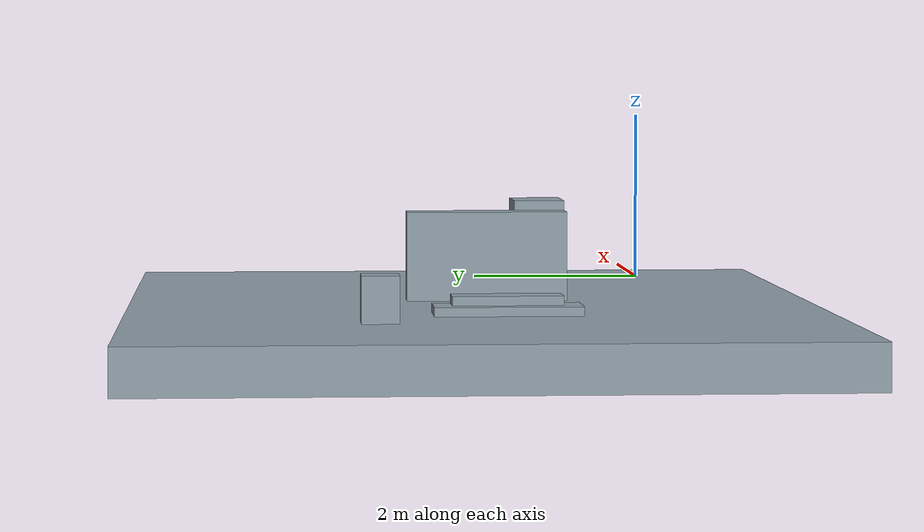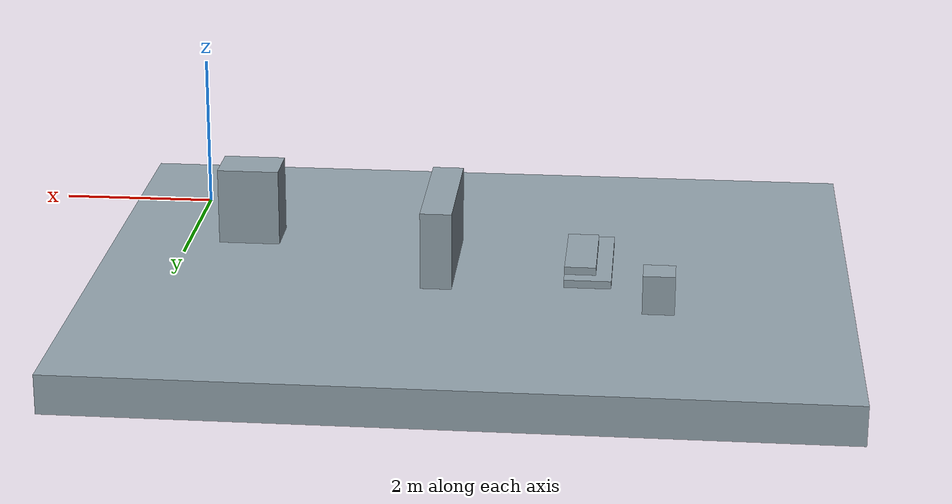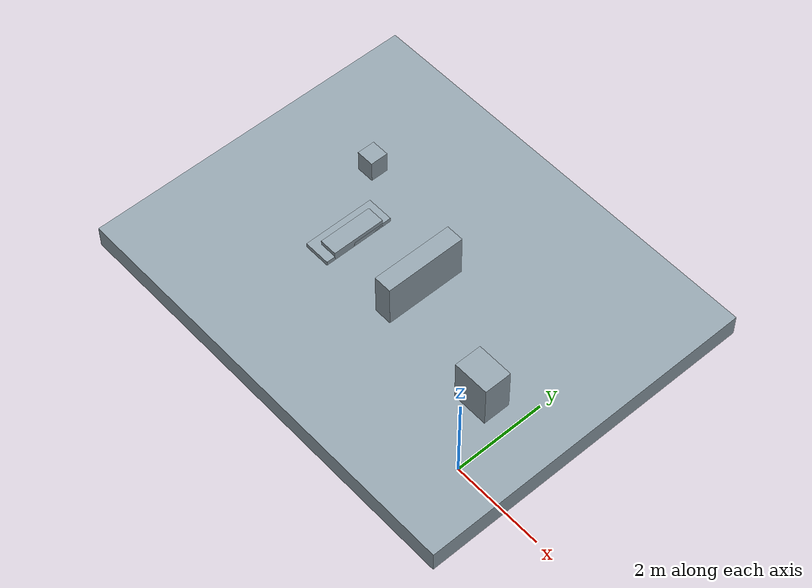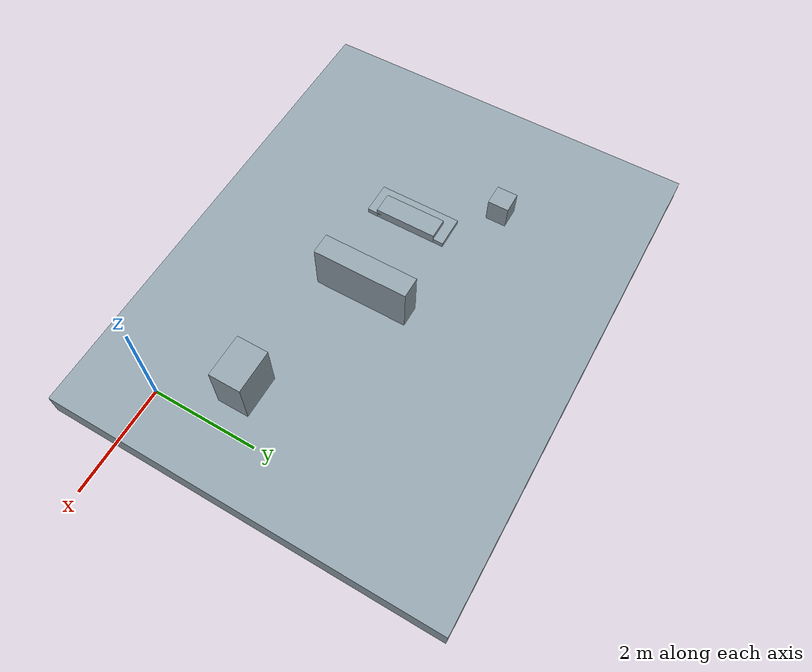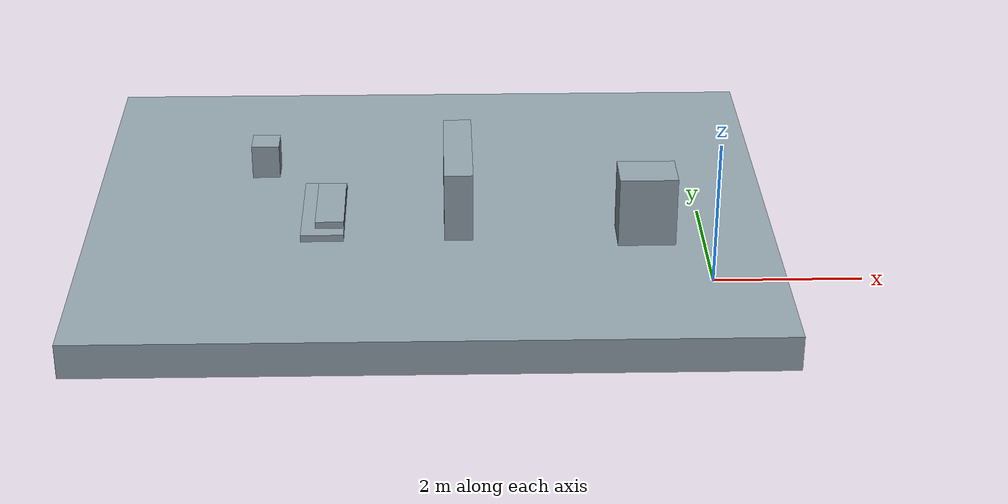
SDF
<?xml version="1.0"?>
<sdf version='1.6'>
<model name="navigation_environment">
  <link name="floor">
    <pose>0 0 0 0 0 0 </pose>
    <inertial>
      <mass>1</mass>
        <inertia>
          <ixx>1</ixx>
          <ixy>0</ixy>
          <ixz>0</ixz>
          <iyy>1</iyy>
          <iyz>0</iyz>
          <izz>1</izz>
        </inertia>
    </inertial>

    <visual name='ground'>
      <pose> -3.8 2.3 -0.25 0 0 0</pose>
      <geometry>
        <box>
          <size>9.6 7.6 0.5</size>
        </box>
      </geometry>
      <material>
        <diffuse>0.57 0.63 0.67 1.0</diffuse>
      </material>
    </visual>

    <visual name='wall'>
      <pose>-3.4 2.1 0.5 0 0 0</pose>
      <geometry>
        <box>
          <size>0.4 1.8 1</size>
        </box>
      </geometry>
      <material>
        <diffuse>0.57 0.63 0.67 1.0</diffuse>
      </material>
    </visual>

    <visual name='box_1'>
      <pose>-0.8 1.3 0.5 0 0 0</pose>
      <geometry>
        <box>
          <size>0.8 0.6 1</size>
        </box>
      </geometry>
      <material>
        <diffuse>0.57 0.63 0.67 1.0</diffuse>
      </material>
    </visual>

    <visual name='box_2'>
      <pose>-6.2 3.4 0.25 0 0 0</pose>
      <geometry>
        <box>
          <size>0.4 0.4 0.5</size>
        </box>
      </geometry>
      <material>
        <diffuse>0.57 0.63 0.67 1.0</diffuse>
      </material>
    </visual>

    <visual name='step_1'>
      <pose>-5.3 2 -0.15 0 0 0</pose>
      <geometry>
        <box>
          <size>0.6 1.6 0.5</size>
        </box>
      </geometry>
      <material>
        <diffuse>0.57 0.63 0.67 1.0</diffuse>
      </material>
    </visual>

    <visual name='step_2'>
      <pose>-5.2 2 -0.05 0 0 0</pose>
      <geometry>
        <box>
          <size>0.4 1.2 0.5</size>
        </box>
      </geometry>
      <material>
        <diffuse>0.57 0.63 0.67 1.0</diffuse>
      </material>
    </visual>

   </link>
</model>
</sdf>
